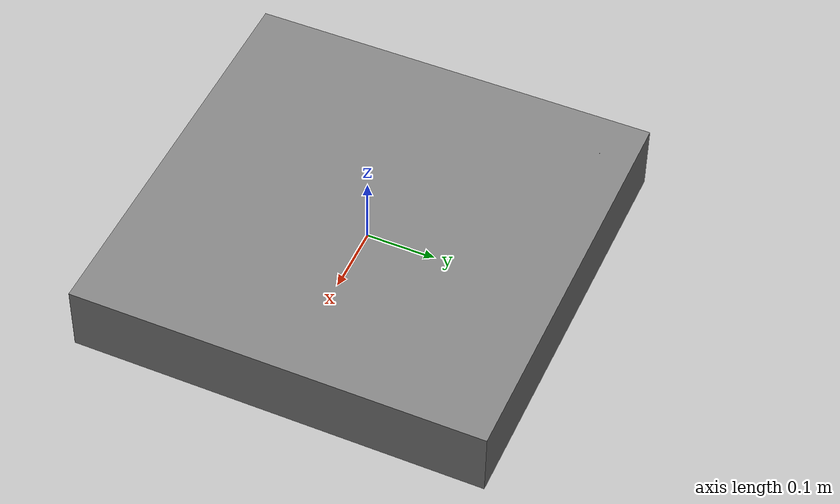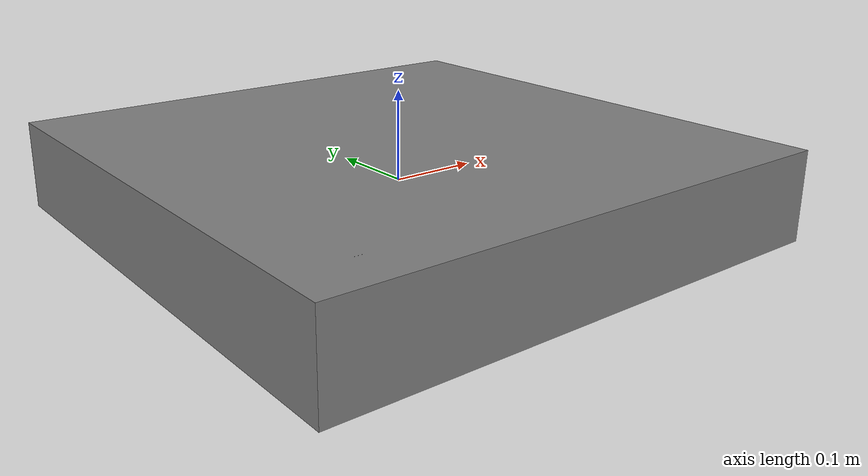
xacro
<?xml version="1.0"?>
<robot xmlns:xacro="http://ros.org/wiki/xacro" name="mecanum_bot">

  <!-- Use simulation time -->
  <xacro:arg name="use_sim_time" default="true"/>

  <!-- Parameters -->
  <xacro:property name="wheel_radius" value="0.05"/>
  <xacro:property name="wheel_separation_x" value="0.5"/>
  <xacro:property name="wheel_separation_y" value="0.5"/>

  <!-- Base link -->
  <link name="base_link">
    <visual>
      <geometry>
        <box size="0.6 0.6 0.1"/>
      </geometry>
      <material name="gray">
        <color rgba="0.5 0.5 0.5 1"/>
      </material>
    </visual>
    <collision>
      <geometry>
        <box size="0.6 0.6 0.1"/>
      </geometry>
    </collision>
    <inertial>
      <mass value="10.0"/>
      <inertia ixx="1.0" ixy="0.0" ixz="0.0" iyy="1.0" iyz="0.0" izz="1.0"/>
    </inertial>
  </link>

  <!-- Wheel Macro -->
  <xacro:macro name="mecanum_wheel" params="prefix x y joint_name">
    <link name="${prefix}_wheel">
      <visual>
        <geometry>
          <cylinder radius="${wheel_radius}" length="0.05"/>
        </geometry>
        <material name="black">
          <color rgba="0.1 0.1 0.1 1"/>
        </material>
      </visual>
      <collision>
        <geometry>
          <cylinder radius="${wheel_radius}" length="0.05"/>
        </geometry>
      </collision>
      <inertial>
        <mass value="1.0"/>
        <inertia ixx="0.1" ixy="0.0" ixz="0.0" iyy="0.1" iyz="0.0" izz="0.1"/>
      </inertial>
    </link>

    <joint name="${joint_name}" type="continuous">
      <parent link="base_link"/>
      <child link="${prefix}_wheel"/>
      <origin xyz="${x} ${y} 0" rpy="0 1.5707 0"/>
      <axis xyz="0 0 1"/>
      <limit effort="1.0" velocity="100.0"/>
      <dynamics damping="0.0" friction="0.0"/>
    </joint>
  </xacro:macro>

  <!-- Wheels -->
  <xacro:mecanum_wheel prefix="front_left"  x="${-wheel_separation_x/2}" y="${wheel_separation_y/2}"  joint_name="front_left_joint"/>
  <xacro:mecanum_wheel prefix="front_right" x="${wheel_separation_x/2}"  y="${wheel_separation_y/2}"  joint_name="front_right_joint"/>
  <xacro:mecanum_wheel prefix="rear_left"   x="${-wheel_separation_x/2}" y="${-wheel_separation_y/2}" joint_name="rear_left_joint"/>
  <xacro:mecanum_wheel prefix="rear_right"  x="${wheel_separation_x/2}"  y="${-wheel_separation_y/2}" joint_name="rear_right_joint"/>

  <!-- Gazebo plugin for ros2_control -->
  <gazebo>
    <plugin name="gazebo_ros2_control" filename="libgazebo_ros2_control.so"/>
  </gazebo>

  <!-- ros2_control configuration -->
  <ros2_control name="MecanumHardware" type="system">
    <hardware>
      <plugin>gazebo_ros2_control/GazeboSystem</plugin>
    </hardware>

    <joint name="front_left_joint">
      <command_interface name="velocity"/>
      <state_interface name="position"/>
      <state_interface name="velocity"/>
    </joint>
    <joint name="front_right_joint">
      <command_interface name="velocity"/>
      <state_interface name="position"/>
      <state_interface name="velocity"/>
    </joint>
    <joint name="rear_left_joint">
      <command_interface name="velocity"/>
      <state_interface name="position"/>
      <state_interface name="velocity"/>
    </joint>
    <joint name="rear_right_joint">
      <command_interface name="velocity"/>
      <state_interface name="position"/>
      <state_interface name="velocity"/>
    </joint>
  </ros2_control>

  <!-- Transmissions -->
  <transmission name="front_left_trans">
    <type>transmission_interface/SimpleTransmission</type>
    <joint name="front_left_joint">
      <hardwareInterface>hardware_interface/VelocityJointInterface</hardwareInterface>
    </joint>
    <actuator name="motor_front_left">
      <mechanicalReduction>1</mechanicalReduction>
    </actuator>
  </transmission>

  <transmission name="front_right_trans">
    <type>transmission_interface/SimpleTransmission</type>
    <joint name="front_right_joint">
      <hardwareInterface>hardware_interface/VelocityJointInterface</hardwareInterface>
    </joint>
    <actuator name="motor_front_right">
      <mechanicalReduction>1</mechanicalReduction>
    </actuator>
  </transmission>

  <transmission name="rear_left_trans">
    <type>transmission_interface/SimpleTransmission</type>
    <joint name="rear_left_joint">
      <hardwareInterface>hardware_interface/VelocityJointInterface</hardwareInterface>
    </joint>
    <actuator name="motor_rear_left">
      <mechanicalReduction>1</mechanicalReduction>
    </actuator>
  </transmission>

  <transmission name="rear_right_trans">
    <type>transmission_interface/SimpleTransmission</type>
    <joint name="rear_right_joint">
      <hardwareInterface>hardware_interface/VelocityJointInterface</hardwareInterface>
    </joint>
    <actuator name="motor_rear_right">
      <mechanicalReduction>1</mechanicalReduction>
    </actuator>
  </transmission>

</robot>
